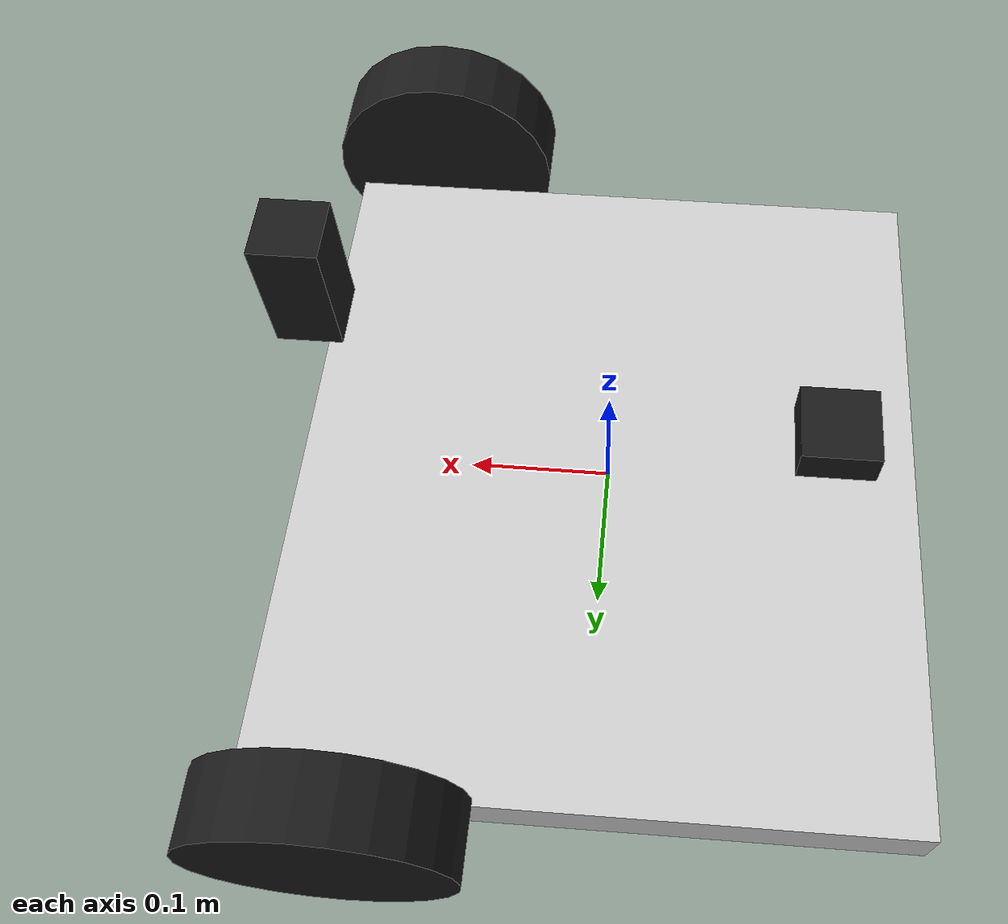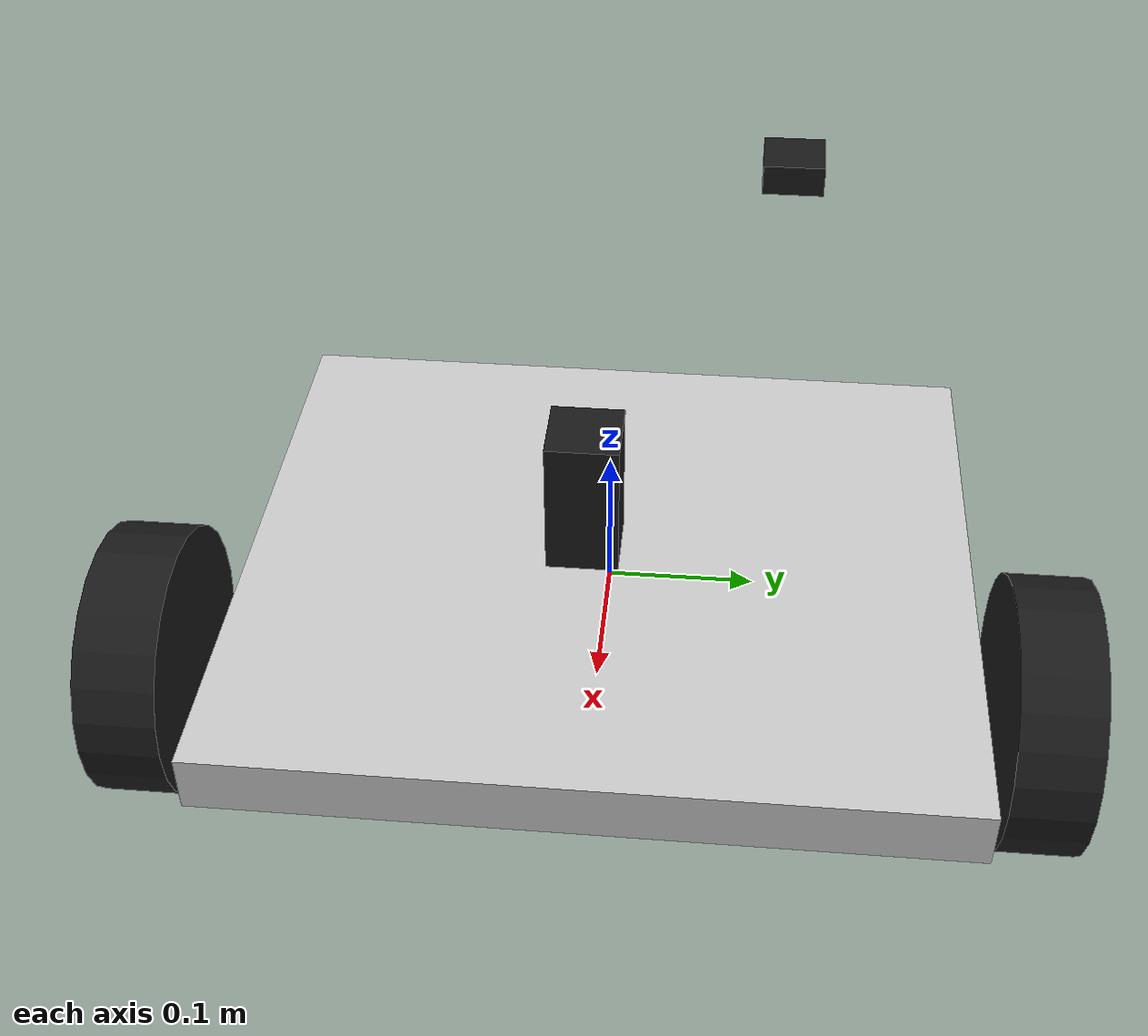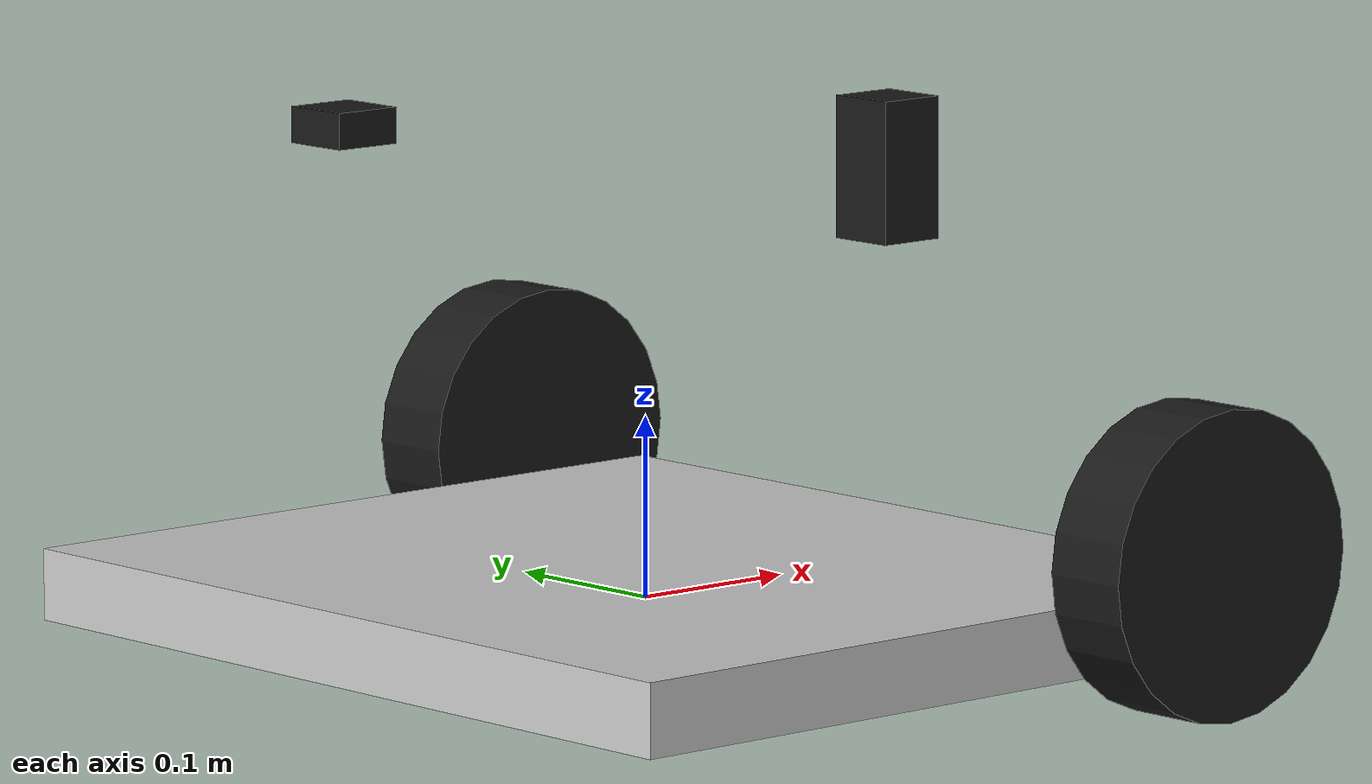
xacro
<?xml version="1.0"?>
<robot xmlns:xacro="http://www.ros.org/wiki/xacro" name="my_robot" >

  <!-- Constants for robot dimensions -->
  <xacro:property name="PI"          value="3.1415926535897931"/>
  <xacro:property name="base_mass"   value="1.0" /> <!-- arbitrary value for base mass -->
  <xacro:property name="base_width"  value="0.50" />
  <xacro:property name="base_length" value="0.44" />
  <xacro:property name="base_height" value="0.04" />
  <xacro:property name="wheel_mass"  value="1.50" /> <!-- arbitrary value for wheel mass -->
  <xacro:property name="wheel_len"   value="0.050" />
  <xacro:property name="wheel_radius" value="0.085" />
  <xacro:property name="wheel_x_offset" value="0.150" />
  <xacro:property name="wheel_z_offset" value="0.040" />
  <xacro:property name="caster_wheel_mass" value="0.1" /> <!-- arbitrary value for caster wheel mass -->
  <xacro:property name="caster_wheel_radius" value="0.025" />
  <xacro:property name="caster_x_offset" value="-0.150" />
  <xacro:property name="caster_z_offset" value="-0.010" />

  <xacro:macro name="cylinder_inertia" params="m r h">
    <inertia  ixx="${m*(3*r*r+h*h)/12}" ixy = "0" ixz = "0"
              iyy="${m*(3*r*r+h*h)/12}" iyz = "0"
              izz="${m*r*r/2}" />
  </xacro:macro>

	<material name="white">
   		<color rgba="0.8 0.8 0.8 1"/>
   	</material>

	<material name="black">
   		<color rgba="0.1 0.1 0.1 1"/>
   	</material>

  <!-- ********************** ROBOT BASE *********************************  -->
  <!-- Base Link -->
  <link name="base_link">
    <collision>
      <origin xyz="0 0 0" rpy="0 0 0"/>
      <geometry>
        <box size="${base_length} ${base_width} ${base_height}"/>
      </geometry>
    </collision>

    <visual>
      <origin xyz="0 0 0" rpy="0 0 0"/>
      <geometry>
        <box size="${base_length} ${base_width} ${base_height}"/>
      </geometry>
      <material name="white"/>
    </visual>

    <inertial>
      <origin xyz="0 0 0" rpy="0 0 0"/>
      <mass value="${base_mass}"/>
      <inertia
        ixx="${base_mass / 12.0 * (base_width*base_width + base_height*base_height)}" ixy="0.0" ixz="0.0"
        iyy="${base_mass / 12.0 * (base_height*base_height + base_length*base_length)}" iyz="0.0"
        izz="${base_mass / 12.0 * (base_width*base_width + base_length*base_length)}"/>
      </inertial>
	</link>

  <!-- ****************** ROBOT BASE FOOTPRINT ***************************  -->
  <link name="base_footprint"/>

  <joint name="base_joint" type="fixed">
    <parent link="base_link"/>
    <child link="base_footprint"/>
    <origin xyz="0 0 ${wheel_z_offset-wheel_radius}" rpy="0 0 0"/>
  </joint>

  <!-- ****************** ROBOT WHEELS ***************************  -->

    <joint name="left_wheel_joint" type="continuous">
      <parent link="base_link"/>
      <child link="left_wheel"/>
      <origin xyz="${wheel_x_offset} ${wheel_len/2+base_width/2} ${wheel_z_offset}" rpy="0 0 0"/>
      <axis xyz="0 1 0"/>
      <dynamics damping="0.2"/>
    </joint>

    <!-- left wheel Link -->
    <link name="left_wheel">
      <collision>
        <origin xyz="0 0 0" rpy="${PI/2} 0 0"/>
        <geometry>
          <cylinder length="${wheel_len}" radius="${wheel_radius}"/>
        </geometry>
      </collision>

      <visual>
        <origin xyz="0 0 0" rpy="${PI/2} 0 0"/>
        <geometry>
          <cylinder length="${wheel_len}" radius="${wheel_radius}"/>
        </geometry>
        <material name="black"/>
      </visual>

      <inertial>
        <origin xyz="0 0 0" rpy="${PI/2} 0 0"/>
        <mass value="${wheel_mass}"/>
        <xacro:cylinder_inertia  m="${wheel_mass}" r="${wheel_radius}" h="${wheel_len}" />
      </inertial>
    </link>

    <joint name="right_wheel_joint" type="continuous">
      <parent link="base_link"/>
      <child link="right_wheel"/>
      <origin xyz="${wheel_x_offset} ${-wheel_len/2-base_width/2} ${wheel_z_offset}" rpy="0 0 0"/>
      <axis xyz="0 1 0"/>
      <dynamics damping="0.2"/>
    </joint>

    <!-- right wheel Link -->
    <link name="right_wheel">
      <collision>
        <origin xyz="0 0 0" rpy="${PI/2} 0 0"/>
        <geometry>
          <cylinder length="${wheel_len}" radius="${wheel_radius}"/>
        </geometry>
      </collision>

      <visual>
        <origin xyz="0 0 0" rpy="${PI/2} 0 0"/>
        <geometry>
          <cylinder length="${wheel_len}" radius="${wheel_radius}"/>
        </geometry>
        <material name="black"/>
      </visual>

      <inertial>
        <origin xyz="0 0 0" rpy="${PI/2} 0 0"/>
        <mass value="${wheel_mass}"/>
        <xacro:cylinder_inertia  m="${wheel_mass}" r="${wheel_radius}" h="${wheel_len}" />
      </inertial>
    </link>

    <joint name="caster_wheel_joint" type="fixed">
      <parent link="base_link"/>
      <child link="caster_wheel"/>
      <origin xyz="${caster_x_offset} 0 ${caster_z_offset}" rpy="0 0 0"/>
    </joint>

    <!-- caster wheel Link -->
    <link name="caster_wheel">
      <collision>
        <origin xyz="0 0 0" rpy="0 0 0"/>
        <geometry>
          <sphere radius="${caster_wheel_radius}"/>
        </geometry>
      </collision>

      <visual>
        <origin xyz="0 0 0" rpy="0 0 0"/>
        <geometry>
          <sphere radius="${caster_wheel_radius}"/>
        </geometry>
        <material name="black"/>
      </visual>

      <inertial>
        <origin xyz="0 0 0" rpy="0 0 0"/>
        <mass value="${caster_wheel_mass}"/>
        <inertia
          ixx="${caster_wheel_mass * 0.4 * (caster_wheel_radius * caster_wheel_radius)}" ixy="0.0" ixz="0.0"
          iyy="${caster_wheel_mass * 0.4 * (caster_wheel_radius * caster_wheel_radius)}" iyz="0.0"
          izz="${caster_wheel_mass * 0.4 * (caster_wheel_radius * caster_wheel_radius)}"/>
        </inertial>
      </link>

  <!-- ****************** LASER SENSOR ***************************  -->

    <!-- laser joint -->
    <joint name="laser_joint" type="fixed">
      <parent link="base_link"/>
      <child link="laser"/>
      <origin xyz="0.180 0.0 0.220 " rpy="0 0 0"/>
    </joint>

    <!-- laser Link -->
    <link name="laser">
      <collision>
        <origin xyz="0 0 0" rpy="0 0 0"/>
        <geometry>
	        <box size="0.040 0.040 0.080"/>
        </geometry>
      </collision>

      <visual>
        <origin xyz="0 0 0" rpy="0 0 0"/>
        <geometry>
		<box size="0.040 0.040 0.080"/>
        </geometry>
        <material name="black"/>
      </visual>

      </link>

  <!-- ****************** IMU SENSOR ***************************  -->

  <!-- imu joint -->
  <joint name="imu_joint" type="fixed">
    <parent link="base_link"/>
    <child link="imu"/>
    <origin xyz="-0.120 0.110 0.260 " rpy="0 0 0"/>
  </joint>

  <!-- imu Link -->
  <link name="imu">
    <collision>
      <origin xyz="0 0 0" rpy="0 0 0"/>
      <geometry>
        <box size="0.040 0.040 0.020"/>
      </geometry>
    </collision>
    <visual>
      <origin xyz="0 0 0" rpy="0 0 0"/>
      <geometry>
        <box size="0.040 0.040 0.020"/>
      </geometry>
      <material name="black"/>
    </visual>
  </link>

</robot>
